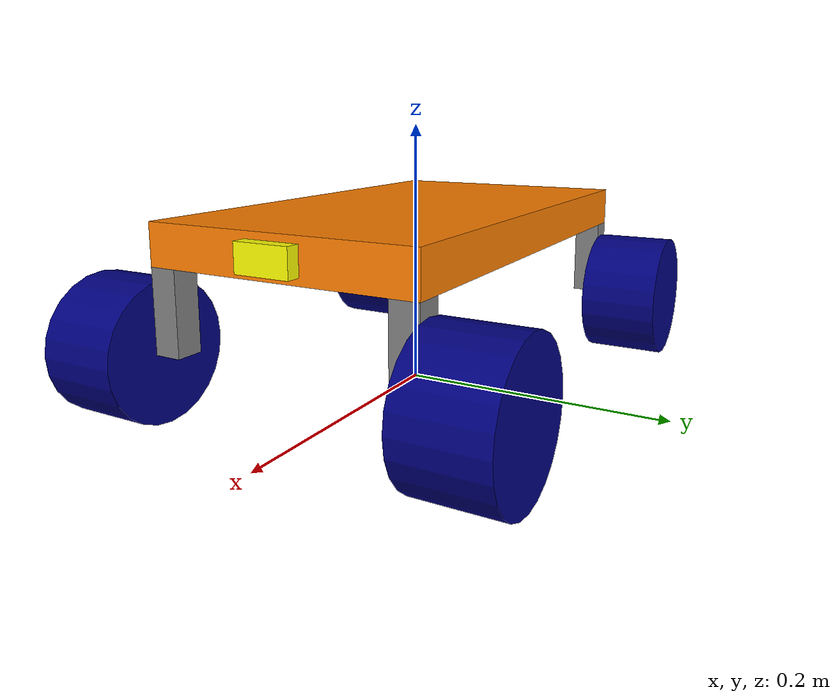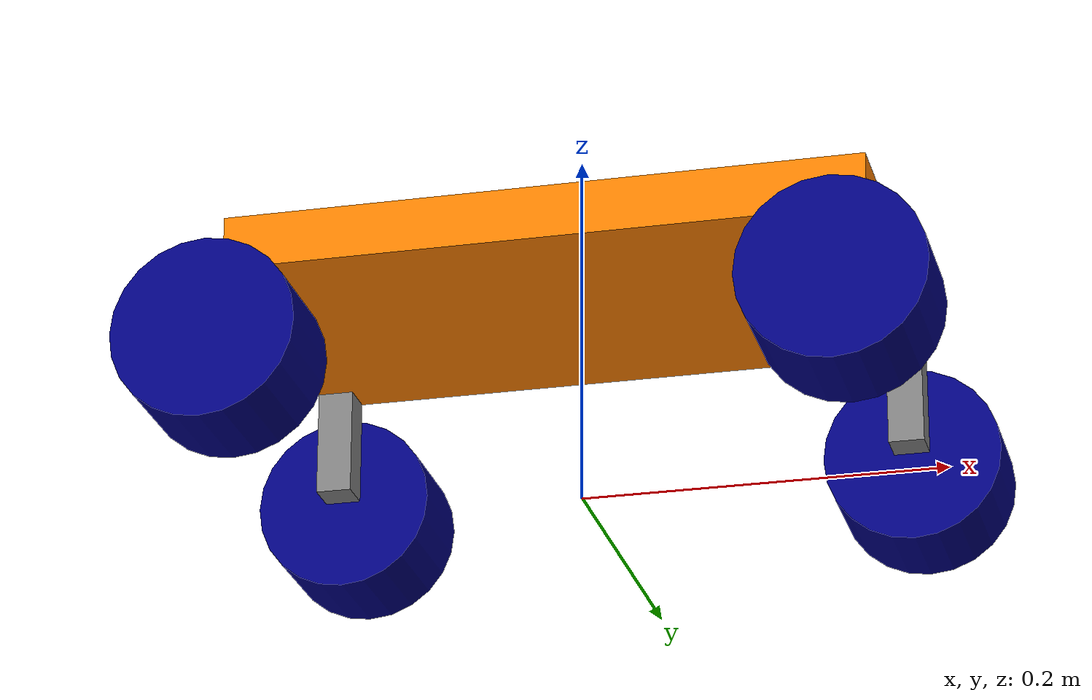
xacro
<?xml version="1.0"?>
<robot name="xrc_rover" xmlns:xacro="http://www.ros.org/wiki/xacro">

    <xacro:include filename="common_properties.xacro" />
    <xacro:include filename="mobile_base.xacro" />
    <xacro:include filename="gazebo_control.xacro" />

    <xacro:include filename="camera.xacro" />

</robot>

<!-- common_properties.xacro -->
<robot xmlns:xacro="http://www.ros.org/wiki/xacro">

    <material name="blue">
        <color rgba="0 0 0.5 1" />
    </material>

    <material name="grey">
        <color rgba="0.5 0.5 0.5 1" />
    </material>

    <material name="orange">
        <color rgba="1.0 0.5 0 1" />
    </material>

    <material name="yellow">
        <color rgba="1.0 1.0 0 1" />
    </material>

    <material name="black">
        <color rgba="0 0 0 1" />
    </material>

    <xacro:macro name="box_inertia" params="m l w h xyz rpy">
        <inertial>
            <origin xyz="${xyz}" rpy="${rpy}" />
            <mass value="${m}" />
            <inertia ixx="${(m/12) * (h*h + l*l)}" ixy="0" ixz="0"
                     iyy="${(m/12) * (w*w + l*l)}" iyz="0"
                     izz="${(m/12) * (w*w + h*h)}" />
        </inertial>
    </xacro:macro>

    <xacro:macro name="cylinder_inertia" params="m r h xyz rpy">
        <inertial>
            <origin xyz="${xyz}" rpy="${rpy}" />
            <mass value="${m}" />
            <inertia ixx="${(m/12) * (3*r*r + h*h)}" ixy="0" ixz="0"
                     iyy="${(m/12) * (3*r*r + h*h)}" iyz="0"
                     izz="${(m/2) * (r*r)}" />
        </inertial>
    </xacro:macro>

    <xacro:macro name="sphere_inertia" params="m r xyz rpy">
        <inertial>
            <origin xyz="${xyz}" rpy="${rpy}" />
            <mass value="${m}" />
            <inertia ixx="${(2/5) * m * r * r}" ixy="0" ixz="0"
                     iyy="${(2/5) * m * r * r}" iyz="0"
                     izz="${(2/5) * m * r * r}" />
        </inertial>
    </xacro:macro>

</robot>

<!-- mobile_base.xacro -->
<robot xmlns:xacro="http://www.ros.org/wiki/xacro">

    <!-- PROPERTIES -->

    <xacro:property name="chassis_length" value="0.35" />
    <xacro:property name="chassis_width" value="0.2" />
    <xacro:property name="chassis_height" value="0.03" />
    <xacro:property name="frame_length" value="0.06" />
    <xacro:property name="frame_width" value="0.02" />
    <xacro:property name="frame_height" value="0.02" />
    <xacro:property name="wheel_radius" value="0.05" />
    <xacro:property name="wheel_length" value="0.06" />

    <!-- BASE FOOTPRINT LINK -->

    <link name="base_footprint" />

    <!-- CHASSIS LINK -->

    <joint name="base_joint" type="fixed">
        <parent link="base_footprint" />
        <child link="chassis_link" />
        <origin xyz="0 0 ${wheel_radius + frame_length}" rpy="0 0 0"/>
    </joint>

    <link name="chassis_link">
        <visual>
            <geometry>
                <box size="${chassis_length} ${chassis_width} ${chassis_height}" />
            </geometry>
            <origin xyz="0 0 ${chassis_height / 2.0}" rpy="0 0 0" />
            <material name="orange" />
        </visual>
        <collision>
            <geometry>
                <box size="${chassis_length} ${chassis_width} ${chassis_height}" />
            </geometry>
            <origin xyz="0 0 ${chassis_height / 2.0}" rpy="0 0 0" />
        </collision>
        <xacro:box_inertia m="3.0" l="${2*chassis_length}" w="${2*chassis_width}" h="${2*chassis_height}"
                           xyz="0 0 ${chassis_height / 2.0}" rpy="0 0 0" />
    </link>

    <gazebo reference="chassis_link">
        <material>Gazebo/Orange</material>
    </gazebo>

    <!-- FRAME MACRO -->

     <xacro:macro name="frame_link" params="prefix">
        <link name="${prefix}_frame_link">
            <visual>
                <geometry>
                    <box size="${frame_length} ${frame_width} ${frame_height}" />
                </geometry>
            <origin xyz="0 0 0" rpy="0 ${pi / 2.0} 0" />
            <material name="grey" />
        </visual>
        <collision>
            <geometry>
                <box size="${frame_length} ${frame_width} ${frame_height}" />
            </geometry>
            <origin xyz="0 0 0" rpy="0 ${pi / 2.0} 0" />
        </collision>
        <xacro:box_inertia m="0.7" l="${2*frame_length}" w="${2*frame_width}" h="${2*frame_height}"
                           xyz="0 0 0" rpy="0 ${pi / 2.0} 0" />
        </link>
    </xacro:macro>

    <!-- WHEEL MACRO -->

    <xacro:macro name="wheel_link" params="prefix">
        <link name="${prefix}_wheel_link">
            <visual>
                <geometry>
                    <cylinder radius="${wheel_radius}" length="${wheel_length}" />
                </geometry>
                <origin xyz="0 0 0" rpy="${pi / 2.0} 0 0" />
                <material name="blue" />
            </visual>
            <collision>
                <geometry>
                    <cylinder radius="${wheel_radius}" length="${wheel_length}" />
                </geometry>
                <origin xyz="0 0 0" rpy="${pi / 2.0} 0 0" />
            </collision>
            <xacro:cylinder_inertia m="0.7" r="${2*wheel_radius}" h="${2*wheel_length}"
                                    xyz="0 0 0" rpy="${pi / 2.0} 0 0" />
        </link>
    </xacro:macro>

    <!-- BACK RIGHT FRAME LINK -->

    <joint name="chassis_back_right_frame_joint" type="fixed">
        <parent link="chassis_link" />
        <child link="back_right_frame_link" />
        <origin xyz="${-(chassis_length - frame_width) / 2.0} ${-(chassis_width - frame_width) / 2.0  }  ${-frame_length / 2.0} "
                rpy="0 0 0" />
    </joint>

    <xacro:frame_link prefix="back_right" />

    <gazebo reference="back_right_frame_link">
        <material>Gazebo/Grey</material>
    </gazebo>

    <!-- BACK LEFT FRAME LINK -->

    <joint name="chassis_back_left_frame_joint" type="fixed">
        <parent link="chassis_link" />
        <child link="back_left_frame_link" />
        <origin xyz="${-(chassis_length - frame_width) / 2.0} ${(chassis_width - frame_width) / 2.0  }  ${-frame_length / 2.0} "
                rpy="0 0 0" />
    </joint>

    <xacro:frame_link prefix="back_left" />

    <gazebo reference="back_left_frame_link">
        <material>Gazebo/Grey</material>
    </gazebo>

    <!-- FRONT RIGHT FRAME LINK -->

    <joint name="chassis_front_right_frame_joint" type="fixed">
        <parent link="chassis_link" />
        <child link="front_right_frame_link" />
         <origin xyz="${(chassis_length - frame_width) / 2.0} ${-(chassis_width - frame_width) / 2.0  }  ${-frame_length / 2.0} "
                rpy="0 0 0" />
    </joint>

    <xacro:frame_link prefix="front_right" />

    <gazebo reference="front_right_frame_link">
        <material>Gazebo/Grey</material>
    </gazebo>

    <!-- FRONT LEFT FRAME LINK -->

    <joint name="chassis_front_left_frame_joint" type="fixed">
        <parent link="chassis_link" />
        <child link="front_left_frame_link" />
         <origin xyz="${(chassis_length - frame_width) / 2.0} ${(chassis_width - frame_width) / 2.0  }  ${-frame_length / 2.0} "
                rpy="0 0 0" />
    </joint>

    <xacro:frame_link prefix="front_left" />

    <gazebo reference="front_left_frame_link">
        <material>Gazebo/Grey</material>
    </gazebo>

    <!-- BACK RIGHT WHEEL LINK -->

    <joint name="back_right_frame_wheel_joint" type="continuous">
        <parent link="back_right_frame_link" />
        <child link="back_right_wheel_link" />
        <origin xyz="0 ${-(frame_width + wheel_length) / 2.0} ${-(frame_length / 2.0)}" rpy="0 0 0" />
        <axis xyz="0 1 0" />
    </joint>

    <xacro:wheel_link prefix="back_right" />

    <gazebo reference="back_right_wheel_link">
        <material>Gazebo/Blue</material>
    </gazebo>

    <!-- BACK LEFT WHEEL LINK -->

    <joint name="back_left_frame_wheel_joint" type="continuous">
        <parent link="back_left_frame_link" />
        <child link="back_left_wheel_link" />
        <origin xyz="0 ${(frame_width + wheel_length) / 2.0} ${-(frame_length / 2.0)}" rpy="0 0 0" />
        <axis xyz="0 1 0" />
    </joint>

    <xacro:wheel_link prefix="back_left" />

    <gazebo reference="back_left_wheel_link">
        <material>Gazebo/Blue</material>
    </gazebo>

    <!-- FRONT RIGHT WHEEL LINK -->

    <joint name="front_right_frame_wheel_joint" type="continuous">
        <parent link="front_right_frame_link" />
        <child link="front_right_wheel_link" />
        <origin xyz="0 ${-(frame_width + wheel_length) / 2.0} ${-(frame_length / 2.0)}" rpy="0 0 0" />
        <axis xyz="0 1 0" />
    </joint>

    <xacro:wheel_link prefix="front_right" />

    <gazebo reference="front_right_wheel_link">
        <material>Gazebo/Blue</material>
        <mu1 value="0.1" />
        <mu2 value="0.1" />
    </gazebo>

    <!-- FRONT LEFT WHEEL LINK -->

    <joint name="front_left_frame_wheel_joint" type="continuous">
        <parent link="front_left_frame_link" />
        <child link="front_left_wheel_link" />
        <origin xyz="0 ${(frame_width + wheel_length) / 2.0} ${-(frame_length / 2.0)}" rpy="0 0 0" />
        <axis xyz="0 1 0" />
    </joint>

    <xacro:wheel_link prefix="front_left" />

    <gazebo reference="front_left_wheel_link">
        <material>Gazebo/Blue</material>
        <mu1 value="0.1" />
        <mu2 value="0.1" />
    </gazebo>

</robot>

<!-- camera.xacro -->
<robot xmlns:xacro="http://www.ros.org/wiki/xacro">

    <xacro:property name="camera_length" value="0.01" />
    <xacro:property name="camera_width" value="0.04" />
    <xacro:property name="camera_height" value="0.02" />

    <link name="camera_link">
        <visual>
            <geometry>
                <box size="${camera_length} ${camera_width} ${camera_height}" />
            </geometry>
            <material name="yellow" />
        </visual>
        <collision>
            <geometry>
                <box size="${camera_length} ${camera_width} ${camera_height}" />
            </geometry>
        </collision>
        <xacro:box_inertia m="0.1" l="${camera_length}" w="${camera_width}" h="${camera_height}"
                           xyz="0 0 0" rpy="0 0 0" />
    </link>

    <joint name="chassis_camera_joint" type="fixed">
        <parent link="chassis_link" />
        <child link="camera_link" />
        <origin xyz="${(chassis_length + camera_length) / 2.0} 0 ${chassis_height / 2.0}" rpy="0 0 0" />
    </joint>

    <link name="camera_link_optical">
    </link>

    <joint name="camera_optical_joint" type="fixed">
        <!-- these values have to be these values otherwise the gazebo camera
            image won't be aligned properly with the frame it is supposedly
            originating from -->
        <origin xyz="0 0 0" rpy="${-pi/2} 0 ${-pi/2}"/>
        <parent link="camera_link"/>
        <child link="camera_link_optical"/>
    </joint>

    <gazebo reference="camera_link">
        <material>Gazebo/Yellow</material>
        <sensor name="camera_sensor" type="camera">
            <pose>0 0 0 0 0 0</pose>
            <visualize>true</visualize>
            <update_rate>10.0</update_rate>
            <camera>
                <horizontal_fov>1.089</horizontal_fov>
                <image>
                    <format>R8G8B8</format>
                    <width>640</width>
                    <height>480</height>
                </image>
                <clip>
                    <near>0.05</near>
                    <far>8.0</far>
                </clip>
            </camera>
            <plugin name="camera_controller" filename="libgazebo_ros_camera.so">
                <frame_name>camera_link_optical</frame_name>
            </plugin>
        </sensor>
    </gazebo>
</robot>
